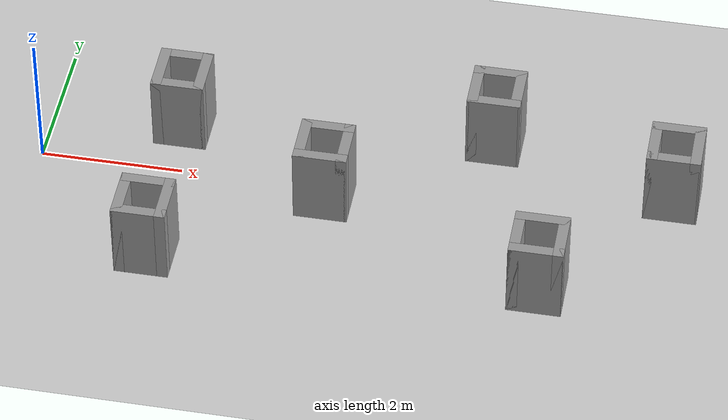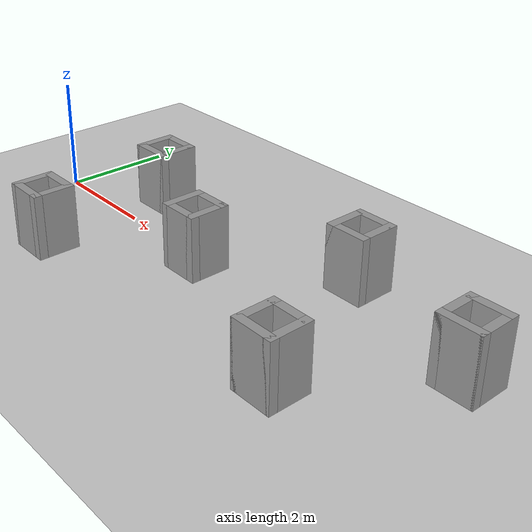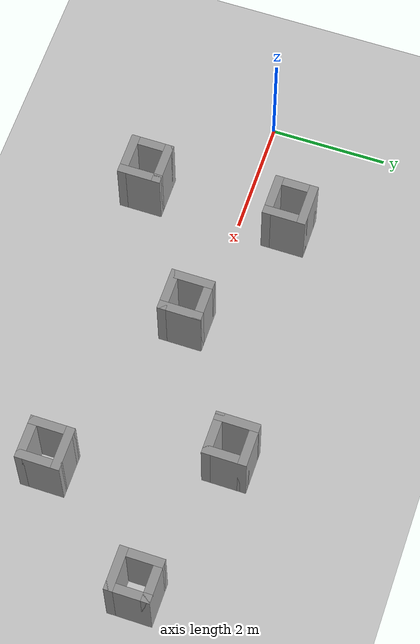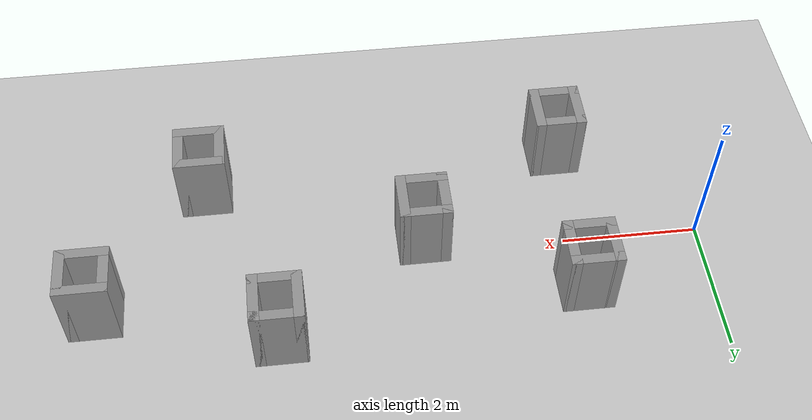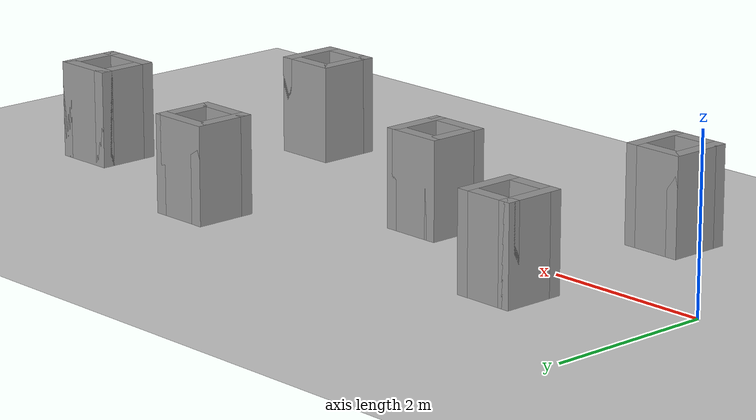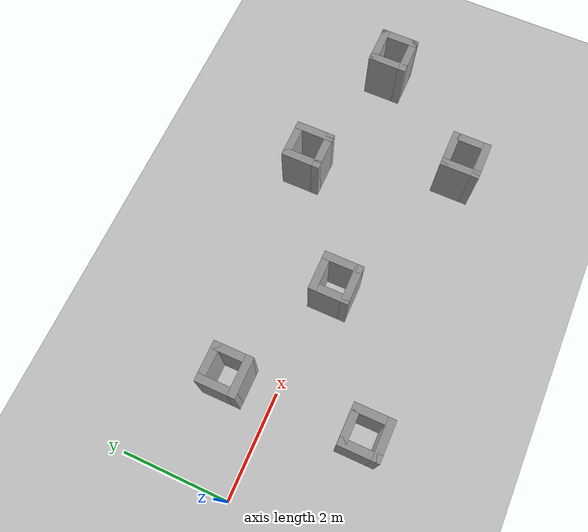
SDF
<sdf version="1.7">
 <world name="default">
  <light name="sun" type="directional">
   <pose>0 0 10 0 -0 0</pose>
   <diffuse>0.8 0.8 0.8 1</diffuse>
   <specular>0.2 0.2 0.2 1</specular>
   <attenuation>
    <range>1000</range>
    <constant>0.9</constant>
    <linear>0.01</linear>
    <quadratic>0.001</quadratic>
   </attenuation>
   <direction>-0.5 0.1 -0.9</direction>
   <spot><inner_angle>0</inner_angle><outer_angle>0</outer_angle><falloff>0</falloff></spot>
  </light>
  <model name="ground_plane">
   <static>1</static>
   <link name="link">
    <collision name="collision">
     <geometry><plane><normal>0 0 1</normal><size>100 100</size></plane></geometry>
     <surface>
      <contact><collide_bitmask>65535</collide_bitmask></contact>
      <friction><ode><mu>100</mu><mu2>50</mu2></ode></friction>
     </surface>
    </collision>
    <visual name="visual">
     <cast_shadows>0</cast_shadows>
     <geometry><plane><normal>0 0 1</normal><size>100 100</size></plane></geometry>
     <material>
      <script><uri>file://media/materials/scripts/gazebo.material</uri><name>Gazebo/Grey</name></script>
     </material>
    </visual>
   </link>
  </model>
  <gravity>0 0 -9.8</gravity>
  <magnetic_field>6e-06 2.3e-05 -4.2e-05</magnetic_field>
  <atmosphere type="adiabatic"/>
  <physics type="ode">
   <max_step_size>0.001</max_step_size>
   <real_time_factor>1</real_time_factor>
   <real_time_update_rate>1000</real_time_update_rate>
  </physics>
  <scene><ambient>0.4 0.4 0.4 1</ambient><background>0.7 0.7 0.7 1</background><shadows>1</shadows></scene>
  <spherical_coordinates>
   <surface_model>EARTH_WGS84</surface_model>
   <latitude_deg>0</latitude_deg>
   <longitude_deg>0</longitude_deg>
   <elevation>0</elevation>
   <heading_deg>0</heading_deg>
  </spherical_coordinates>
  <model name="small_box">
   <pose>1.86144 0.855335 0 0 -0 0</pose>
   <link name="Wall_0">
    <collision name="Wall_0_Collision">
     <geometry><box><size>0.75 0.15 1.15</size></box></geometry>
     <pose>0 0 0.575 0 -0 0</pose>
    </collision>
    <visual name="Wall_0_Visual">
     <pose>0 0 0.575 0 -0 0</pose>
     <geometry><box><size>0.75 0.15 1.15</size></box></geometry>
     <material>
      <script><uri>file://media/materials/scripts/gazebo.material</uri><name>Gazebo/Grey</name></script>
      <ambient>1 1 1 1</ambient>
     </material>
     <meta><layer>0</layer></meta>
    </visual>
    <pose>0 -0.3 0 0 -0 0</pose>
   </link>
   <link name="Wall_4">
    <collision name="Wall_4_Collision">
     <geometry><box><size>0.75 0.15 1.15</size></box></geometry>
     <pose>0 0 0.575 0 -0 0</pose>
    </collision>
    <visual name="Wall_4_Visual">
     <pose>0 0 0.575 0 -0 0</pose>
     <geometry><box><size>0.75 0.15 1.15</size></box></geometry>
     <material>
      <script><uri>file://media/materials/scripts/gazebo.material</uri><name>Gazebo/Grey</name></script>
      <ambient>1 1 1 1</ambient>
     </material>
     <meta><layer>0</layer></meta>
    </visual>
    <pose>-0.3 0 0 0 -0 1.5708</pose>
   </link>
   <link name="Wall_6">
    <collision name="Wall_6_Collision">
     <geometry><box><size>0.75 0.15 1.15</size></box></geometry>
     <pose>0 0 0.575 0 -0 0</pose>
    </collision>
    <visual name="Wall_6_Visual">
     <pose>0 0 0.575 0 -0 0</pose>
     <geometry><box><size>0.75 0.15 1.15</size></box></geometry>
     <material>
      <script><uri>file://media/materials/scripts/gazebo.material</uri><name>Gazebo/Grey</name></script>
      <ambient>1 1 1 1</ambient>
     </material>
     <meta><layer>0</layer></meta>
    </visual>
    <pose>0 0.3 0 0 -0 0</pose>
   </link>
   <link name="Wall_7">
    <collision name="Wall_7_Collision">
     <geometry><box><size>0.75 0.15 1.15</size></box></geometry>
     <pose>0 0 0.575 0 -0 0</pose>
    </collision>
    <visual name="Wall_7_Visual">
     <pose>0 0 0.575 0 -0 0</pose>
     <geometry><box><size>0.75 0.15 1.15</size></box></geometry>
     <material>
      <script><uri>file://media/materials/scripts/gazebo.material</uri><name>Gazebo/Grey</name></script>
      <ambient>1 1 1 1</ambient>
     </material>
     <meta><layer>0</layer></meta>
    </visual>
    <pose>0.3 0 0 0 -0 -1.5708</pose>
   </link>
   <static>1</static>
  </model>
  <model name="small_box_0">
   <pose>4.0804 -0.211226 0 0 -0 0</pose>
   <link name="Wall_0">
    <collision name="Wall_0_Collision">
     <geometry><box><size>0.75 0.15 1.15</size></box></geometry>
     <pose>0 0 0.575 0 -0 0</pose>
    </collision>
    <visual name="Wall_0_Visual">
     <pose>0 0 0.575 0 -0 0</pose>
     <geometry><box><size>0.75 0.15 1.15</size></box></geometry>
     <material>
      <script><uri>file://media/materials/scripts/gazebo.material</uri><name>Gazebo/Grey</name></script>
      <ambient>1 1 1 1</ambient>
     </material>
     <meta><layer>0</layer></meta>
    </visual>
    <pose>0 -0.3 0 0 -0 0</pose>
   </link>
   <link name="Wall_4">
    <collision name="Wall_4_Collision">
     <geometry><box><size>0.75 0.15 1.15</size></box></geometry>
     <pose>0 0 0.575 0 -0 0</pose>
    </collision>
    <visual name="Wall_4_Visual">
     <pose>0 0 0.575 0 -0 0</pose>
     <geometry><box><size>0.75 0.15 1.15</size></box></geometry>
     <material>
      <script><uri>file://media/materials/scripts/gazebo.material</uri><name>Gazebo/Grey</name></script>
      <ambient>1 1 1 1</ambient>
     </material>
     <meta><layer>0</layer></meta>
    </visual>
    <pose>-0.3 0 0 0 -0 1.5708</pose>
   </link>
   <link name="Wall_6">
    <collision name="Wall_6_Collision">
     <geometry><box><size>0.75 0.15 1.15</size></box></geometry>
     <pose>0 0 0.575 0 -0 0</pose>
    </collision>
    <visual name="Wall_6_Visual">
     <pose>0 0 0.575 0 -0 0</pose>
     <geometry><box><size>0.75 0.15 1.15</size></box></geometry>
     <material>
      <script><uri>file://media/materials/scripts/gazebo.material</uri><name>Gazebo/Grey</name></script>
      <ambient>1 1 1 1</ambient>
     </material>
     <meta><layer>0</layer></meta>
    </visual>
    <pose>0 0.3 0 0 -0 0</pose>
   </link>
   <link name="Wall_7">
    <collision name="Wall_7_Collision">
     <geometry><box><size>0.75 0.15 1.15</size></box></geometry>
     <pose>0 0 0.575 0 -0 0</pose>
    </collision>
    <visual name="Wall_7_Visual">
     <pose>0 0 0.575 0 -0 0</pose>
     <geometry><box><size>0.75 0.15 1.15</size></box></geometry>
     <material>
      <script><uri>file://media/materials/scripts/gazebo.material</uri><name>Gazebo/Grey</name></script>
      <ambient>1 1 1 1</ambient>
     </material>
     <meta><layer>0</layer></meta>
    </visual>
    <pose>0.3 0 0 0 -0 -1.5708</pose>
   </link>
   <static>1</static>
  </model>
  <model name="small_box_1">
   <pose>6.2493 1.28052 0 0 -0 0</pose>
   <link name="Wall_0">
    <collision name="Wall_0_Collision">
     <geometry><box><size>0.75 0.15 1.15</size></box></geometry>
     <pose>0 0 0.575 0 -0 0</pose>
    </collision>
    <visual name="Wall_0_Visual">
     <pose>0 0 0.575 0 -0 0</pose>
     <geometry><box><size>0.75 0.15 1.15</size></box></geometry>
     <material>
      <script><uri>file://media/materials/scripts/gazebo.material</uri><name>Gazebo/Grey</name></script>
      <ambient>1 1 1 1</ambient>
     </material>
     <meta><layer>0</layer></meta>
    </visual>
    <pose>0 -0.3 0 0 -0 0</pose>
   </link>
   <link name="Wall_4">
    <collision name="Wall_4_Collision">
     <geometry><box><size>0.75 0.15 1.15</size></box></geometry>
     <pose>0 0 0.575 0 -0 0</pose>
    </collision>
    <visual name="Wall_4_Visual">
     <pose>0 0 0.575 0 -0 0</pose>
     <geometry><box><size>0.75 0.15 1.15</size></box></geometry>
     <material>
      <script><uri>file://media/materials/scripts/gazebo.material</uri><name>Gazebo/Grey</name></script>
      <ambient>1 1 1 1</ambient>
     </material>
     <meta><layer>0</layer></meta>
    </visual>
    <pose>-0.3 0 0 0 -0 1.5708</pose>
   </link>
   <link name="Wall_6">
    <collision name="Wall_6_Collision">
     <geometry><box><size>0.75 0.15 1.15</size></box></geometry>
     <pose>0 0 0.575 0 -0 0</pose>
    </collision>
    <visual name="Wall_6_Visual">
     <pose>0 0 0.575 0 -0 0</pose>
     <geometry><box><size>0.75 0.15 1.15</size></box></geometry>
     <material>
      <script><uri>file://media/materials/scripts/gazebo.material</uri><name>Gazebo/Grey</name></script>
      <ambient>1 1 1 1</ambient>
     </material>
     <meta><layer>0</layer></meta>
    </visual>
    <pose>0 0.3 0 0 -0 0</pose>
   </link>
   <link name="Wall_7">
    <collision name="Wall_7_Collision">
     <geometry><box><size>0.75 0.15 1.15</size></box></geometry>
     <pose>0 0 0.575 0 -0 0</pose>
    </collision>
    <visual name="Wall_7_Visual">
     <pose>0 0 0.575 0 -0 0</pose>
     <geometry><box><size>0.75 0.15 1.15</size></box></geometry>
     <material>
      <script><uri>file://media/materials/scripts/gazebo.material</uri><name>Gazebo/Grey</name></script>
      <ambient>1 1 1 1</ambient>
     </material>
     <meta><layer>0</layer></meta>
    </visual>
    <pose>0.3 0 0 0 -0 -1.5708</pose>
   </link>
   <static>1</static>
  </model>
  <model name="small_box_2">
   <pose>7.24175 -1.4631 0 0 -0 0</pose>
   <link name="Wall_0">
    <collision name="Wall_0_Collision">
     <geometry><box><size>0.75 0.15 1.15</size></box></geometry>
     <pose>0 0 0.575 0 -0 0</pose>
    </collision>
    <visual name="Wall_0_Visual">
     <pose>0 0 0.575 0 -0 0</pose>
     <geometry><box><size>0.75 0.15 1.15</size></box></geometry>
     <material>
      <script><uri>file://media/materials/scripts/gazebo.material</uri><name>Gazebo/Grey</name></script>
      <ambient>1 1 1 1</ambient>
     </material>
     <meta><layer>0</layer></meta>
    </visual>
    <pose>0 -0.3 0 0 -0 0</pose>
   </link>
   <link name="Wall_4">
    <collision name="Wall_4_Collision">
     <geometry><box><size>0.75 0.15 1.15</size></box></geometry>
     <pose>0 0 0.575 0 -0 0</pose>
    </collision>
    <visual name="Wall_4_Visual">
     <pose>0 0 0.575 0 -0 0</pose>
     <geometry><box><size>0.75 0.15 1.15</size></box></geometry>
     <material>
      <script><uri>file://media/materials/scripts/gazebo.material</uri><name>Gazebo/Grey</name></script>
      <ambient>1 1 1 1</ambient>
     </material>
     <meta><layer>0</layer></meta>
    </visual>
    <pose>-0.3 0 0 0 -0 1.5708</pose>
   </link>
   <link name="Wall_6">
    <collision name="Wall_6_Collision">
     <geometry><box><size>0.75 0.15 1.15</size></box></geometry>
     <pose>0 0 0.575 0 -0 0</pose>
    </collision>
    <visual name="Wall_6_Visual">
     <pose>0 0 0.575 0 -0 0</pose>
     <geometry><box><size>0.75 0.15 1.15</size></box></geometry>
     <material>
      <script><uri>file://media/materials/scripts/gazebo.material</uri><name>Gazebo/Grey</name></script>
      <ambient>1 1 1 1</ambient>
     </material>
     <meta><layer>0</layer></meta>
    </visual>
    <pose>0 0.3 0 0 -0 0</pose>
   </link>
   <link name="Wall_7">
    <collision name="Wall_7_Collision">
     <geometry><box><size>0.75 0.15 1.15</size></box></geometry>
     <pose>0 0 0.575 0 -0 0</pose>
    </collision>
    <visual name="Wall_7_Visual">
     <pose>0 0 0.575 0 -0 0</pose>
     <geometry><box><size>0.75 0.15 1.15</size></box></geometry>
     <material>
      <script><uri>file://media/materials/scripts/gazebo.material</uri><name>Gazebo/Grey</name></script>
      <ambient>1 1 1 1</ambient>
     </material>
     <meta><layer>0</layer></meta>
    </visual>
    <pose>0.3 0 0 0 -0 -1.5708</pose>
   </link>
   <static>1</static>
  </model>
  <model name="small_box_3">
   <pose>1.87745 -1.68415 0 0 -0 0</pose>
   <link name="Wall_0">
    <collision name="Wall_0_Collision">
     <geometry><box><size>0.75 0.15 1.15</size></box></geometry>
     <pose>0 0 0.575 0 -0 0</pose>
    </collision>
    <visual name="Wall_0_Visual">
     <pose>0 0 0.575 0 -0 0</pose>
     <geometry><box><size>0.75 0.15 1.15</size></box></geometry>
     <material>
      <script><uri>file://media/materials/scripts/gazebo.material</uri><name>Gazebo/Grey</name></script>
      <ambient>1 1 1 1</ambient>
     </material>
     <meta><layer>0</layer></meta>
    </visual>
    <pose>0 -0.3 0 0 -0 0</pose>
   </link>
   <link name="Wall_4">
    <collision name="Wall_4_Collision">
     <geometry><box><size>0.75 0.15 1.15</size></box></geometry>
     <pose>0 0 0.575 0 -0 0</pose>
    </collision>
    <visual name="Wall_4_Visual">
     <pose>0 0 0.575 0 -0 0</pose>
     <geometry><box><size>0.75 0.15 1.15</size></box></geometry>
     <material>
      <script><uri>file://media/materials/scripts/gazebo.material</uri><name>Gazebo/Grey</name></script>
      <ambient>1 1 1 1</ambient>
     </material>
     <meta><layer>0</layer></meta>
    </visual>
    <pose>-0.3 0 0 0 -0 1.5708</pose>
   </link>
   <link name="Wall_6">
    <collision name="Wall_6_Collision">
     <geometry><box><size>0.75 0.15 1.15</size></box></geometry>
     <pose>0 0 0.575 0 -0 0</pose>
    </collision>
    <visual name="Wall_6_Visual">
     <pose>0 0 0.575 0 -0 0</pose>
     <geometry><box><size>0.75 0.15 1.15</size></box></geometry>
     <material>
      <script><uri>file://media/materials/scripts/gazebo.material</uri><name>Gazebo/Grey</name></script>
      <ambient>1 1 1 1</ambient>
     </material>
     <meta><layer>0</layer></meta>
    </visual>
    <pose>0 0.3 0 0 -0 0</pose>
   </link>
   <link name="Wall_7">
    <collision name="Wall_7_Collision">
     <geometry><box><size>0.75 0.15 1.15</size></box></geometry>
     <pose>0 0 0.575 0 -0 0</pose>
    </collision>
    <visual name="Wall_7_Visual">
     <pose>0 0 0.575 0 -0 0</pose>
     <geometry><box><size>0.75 0.15 1.15</size></box></geometry>
     <material>
      <script><uri>file://media/materials/scripts/gazebo.material</uri><name>Gazebo/Grey</name></script>
      <ambient>1 1 1 1</ambient>
     </material>
     <meta><layer>0</layer></meta>
    </visual>
    <pose>0.3 0 0 0 -0 -1.5708</pose>
   </link>
   <static>1</static>
  </model>
  <model name="small_box_4">
   <pose>8.83636 0.59345 0 0 -0 0</pose>
   <link name="Wall_0">
    <collision name="Wall_0_Collision">
     <geometry><box><size>0.75 0.15 1.15</size></box></geometry>
     <pose>0 0 0.575 0 -0 0</pose>
    </collision>
    <visual name="Wall_0_Visual">
     <pose>0 0 0.575 0 -0 0</pose>
     <geometry><box><size>0.75 0.15 1.15</size></box></geometry>
     <material>
      <script><uri>file://media/materials/scripts/gazebo.material</uri><name>Gazebo/Grey</name></script>
      <ambient>1 1 1 1</ambient>
     </material>
     <meta><layer>0</layer></meta>
    </visual>
    <pose>0 -0.3 0 0 -0 0</pose>
   </link>
   <link name="Wall_4">
    <collision name="Wall_4_Collision">
     <geometry><box><size>0.75 0.15 1.15</size></box></geometry>
     <pose>0 0 0.575 0 -0 0</pose>
    </collision>
    <visual name="Wall_4_Visual">
     <pose>0 0 0.575 0 -0 0</pose>
     <geometry><box><size>0.75 0.15 1.15</size></box></geometry>
     <material>
      <script><uri>file://media/materials/scripts/gazebo.material</uri><name>Gazebo/Grey</name></script>
      <ambient>1 1 1 1</ambient>
     </material>
     <meta><layer>0</layer></meta>
    </visual>
    <pose>-0.3 0 0 0 -0 1.5708</pose>
   </link>
   <link name="Wall_6">
    <collision name="Wall_6_Collision">
     <geometry><box><size>0.75 0.15 1.15</size></box></geometry>
     <pose>0 0 0.575 0 -0 0</pose>
    </collision>
    <visual name="Wall_6_Visual">
     <pose>0 0 0.575 0 -0 0</pose>
     <geometry><box><size>0.75 0.15 1.15</size></box></geometry>
     <material>
      <script><uri>file://media/materials/scripts/gazebo.material</uri><name>Gazebo/Grey</name></script>
      <ambient>1 1 1 1</ambient>
     </material>
     <meta><layer>0</layer></meta>
    </visual>
    <pose>0 0.3 0 0 -0 0</pose>
   </link>
   <link name="Wall_7">
    <collision name="Wall_7_Collision">
     <geometry><box><size>0.75 0.15 1.15</size></box></geometry>
     <pose>0 0 0.575 0 -0 0</pose>
    </collision>
    <visual name="Wall_7_Visual">
     <pose>0 0 0.575 0 -0 0</pose>
     <geometry><box><size>0.75 0.15 1.15</size></box></geometry>
     <material>
      <script><uri>file://media/materials/scripts/gazebo.material</uri><name>Gazebo/Grey</name></script>
      <ambient>1 1 1 1</ambient>
     </material>
     <meta><layer>0</layer></meta>
    </visual>
    <pose>0.3 0 0 0 -0 -1.5708</pose>
   </link>
   <static>1</static>
  </model>
 </world>
</sdf>
